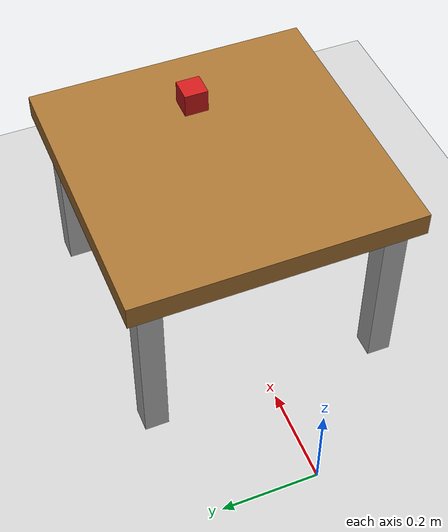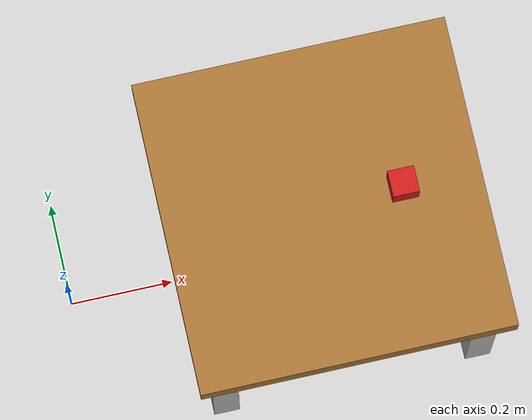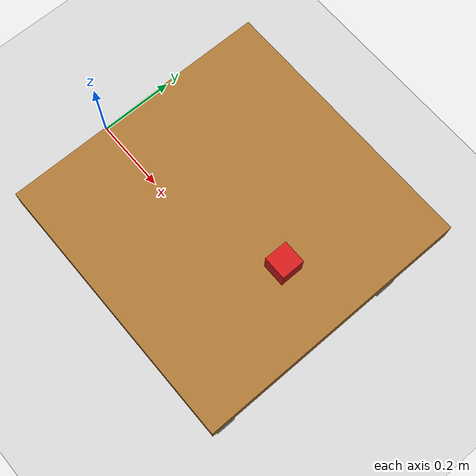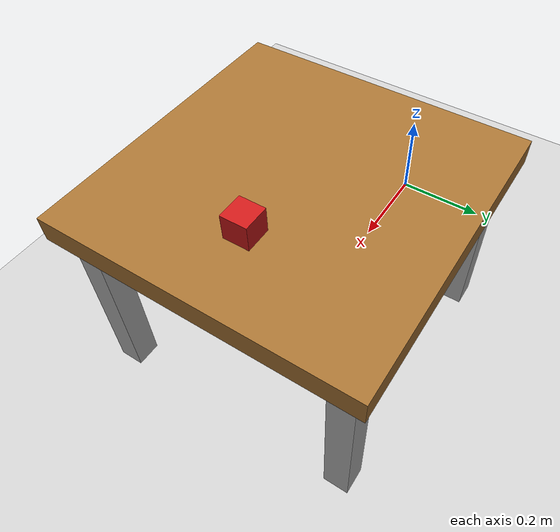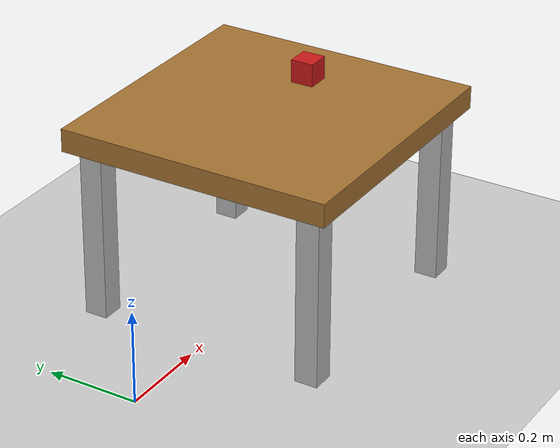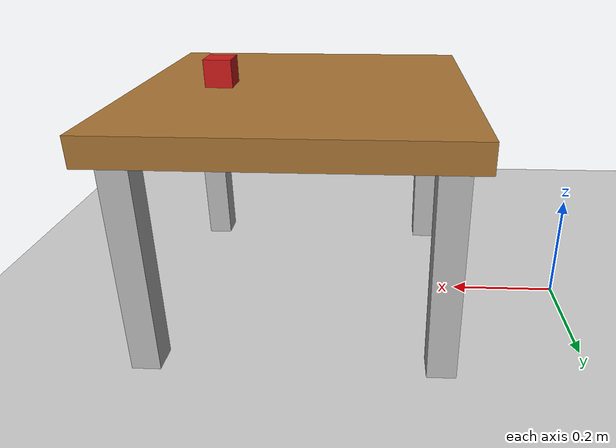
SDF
<?xml version="1.0"?>
<sdf version="1.6">
  <world name="myrobot_workshop">

    <!-- 地面：内联定义（不用 model://ground_plane，避免 gzserver 访问在线
         模型数据库 models.gazebosim.org 导致世界加载挂起；离线自包含） -->
    <model name="ground_plane">
      <static>true</static>
      <link name="link">
        <collision name="collision">
          <geometry>
            <plane>
              <normal>0 0 1</normal>
              <size>100 100</size>
            </plane>
          </geometry>
        </collision>
        <visual name="visual">
          <geometry>
            <plane>
              <normal>0 0 1</normal>
              <size>100 100</size>
            </plane>
          </geometry>
          <material>
            <script>
              <uri>file://media/materials/scripts/gazebo.material</uri>
              <name>Gazebo/Grey</name>
            </script>
          </material>
        </visual>
      </link>
    </model>

    <!-- 太阳光：内联定义（同地面，避免 model://sun 触发在线数据库查询） -->
    <light type="directional" name="sun">
      <cast_shadows>true</cast_shadows>
      <pose>0 0 10 0 0 0</pose>
      <diffuse>0.8 0.8 0.8 1</diffuse>
      <specular>0.2 0.2 0.2 1</specular>
      <direction>-0.5 0.1 -0.9</direction>
    </light>

    <!-- 桌子：桌面高 0.4m，桌面上放目标方块 -->
    <model name="table">
      <pose>0.5 0 0 0 0 0</pose>
      <!-- 固定工作台，避免动态桌体在地面上缓慢漂移并带走高摩擦目标方块。 -->
      <static>true</static>

      <link name="table_top">
        <pose>0 0 0.4 0 0 0</pose>
        <collision name="collision">
          <geometry>
            <box><size>0.6 0.6 0.05</size></box>
          </geometry>
        </collision>
        <visual name="visual">
          <geometry>
            <box><size>0.6 0.6 0.05</size></box>
          </geometry>
          <material>
            <ambient>0.65 0.45 0.2 1</ambient>
            <diffuse>0.65 0.45 0.2 1</diffuse>
          </material>
        </visual>
        <inertial>
          <mass>5</mass>
          <inertia>
            <ixx>0.305</ixx><iyy>0.305</iyy><izz>0.5</izz>
            <ixy>0</ixy><ixz>0</ixz><iyz>0</iyz>
          </inertia>
        </inertial>
      </link>

      <link name="table_leg1">
        <pose>-0.25 0.25 0.2 0 0 0</pose>
        <collision name="collision">
          <geometry>
            <box><size>0.05 0.05 0.4</size></box>
          </geometry>
        </collision>
        <visual name="visual">
          <geometry>
            <box><size>0.05 0.05 0.4</size></box>
          </geometry>
        </visual>
        <inertial>
          <mass>0.5</mass>
          <inertia>
            <ixx>0.017</ixx><iyy>0.017</iyy><izz>0.0002</izz>
            <ixy>0</ixy><ixz>0</ixz><iyz>0</iyz>
          </inertia>
        </inertial>
      </link>
      <link name="table_leg2">
        <pose>0.25 0.25 0.2 0 0 0</pose>
        <collision name="collision">
          <geometry>
            <box><size>0.05 0.05 0.4</size></box>
          </geometry>
        </collision>
        <visual name="visual">
          <geometry>
            <box><size>0.05 0.05 0.4</size></box>
          </geometry>
        </visual>
        <inertial>
          <mass>0.5</mass>
          <inertia>
            <ixx>0.017</ixx><iyy>0.017</iyy><izz>0.0002</izz>
            <ixy>0</ixy><ixz>0</ixz><iyz>0</iyz>
          </inertia>
        </inertial>
      </link>
      <link name="table_leg3">
        <pose>-0.25 -0.25 0.2 0 0 0</pose>
        <collision name="collision">
          <geometry>
            <box><size>0.05 0.05 0.4</size></box>
          </geometry>
        </collision>
        <visual name="visual">
          <geometry>
            <box><size>0.05 0.05 0.4</size></box>
          </geometry>
        </visual>
        <inertial>
          <mass>0.5</mass>
          <inertia>
            <ixx>0.017</ixx><iyy>0.017</iyy><izz>0.0002</izz>
            <ixy>0</ixy><ixz>0</ixz><iyz>0</iyz>
          </inertia>
        </inertial>
      </link>
      <link name="table_leg4">
        <pose>0.25 -0.25 0.2 0 0 0</pose>
        <collision name="collision">
          <geometry>
            <box><size>0.05 0.05 0.4</size></box>
          </geometry>
        </collision>
        <visual name="visual">
          <geometry>
            <box><size>0.05 0.05 0.4</size></box>
          </geometry>
        </visual>
        <inertial>
          <mass>0.5</mass>
          <inertia>
            <ixx>0.017</ixx><iyy>0.017</iyy><izz>0.0002</izz>
            <ixy>0</ixy><ixz>0</ixz><iyz>0</iyz>
          </inertia>
        </inertial>
      </link>

      <joint name="leg1_joint" type="fixed">
        <parent>table_top</parent>
        <child>table_leg1</child>
      </joint>
      <joint name="leg2_joint" type="fixed">
        <parent>table_top</parent>
        <child>table_leg2</child>
      </joint>
      <joint name="leg3_joint" type="fixed">
        <parent>table_top</parent>
        <child>table_leg3</child>
      </joint>
      <joint name="leg4_joint" type="fixed">
        <parent>table_top</parent>
        <child>table_leg4</child>
      </joint>
    </model>

    <!-- 目标方块：放在桌面上（桌面顶面 z≈0.425，方块中心 z=0.45） -->
    <model name="target_box">
      <pose>0.65 0 0.45 0 0 0</pose>
      <link name="box">
        <collision name="collision">
          <geometry>
            <box><size>0.05 0.05 0.05</size></box>
          </geometry>
          <surface>
            <friction>
              <ode>
                <mu>5.0</mu>
                <mu2>5.0</mu2>
              </ode>
            </friction>
          </surface>
        </collision>
        <visual name="visual">
          <geometry>
            <box><size>0.05 0.05 0.05</size></box>
          </geometry>
          <material>
            <ambient>0.8 0.1 0.1 1</ambient>
            <diffuse>0.8 0.1 0.1 1</diffuse>
          </material>
        </visual>
        <inertial>
          <mass>0.1</mass>
          <inertia>
            <ixx>0.000042</ixx><iyy>0.000042</iyy><izz>0.000042</izz>
            <ixy>0</ixy><ixz>0</ixz><iyz>0</iyz>
          </inertia>
        </inertial>
      </link>
      <plugin name="target_box_grasp_attachment" filename="libmyrobot_grasp_attach.so">
        <robot_model>my_robot</robot_model>
        <robot_link>hand_link</robot_link>
      </plugin>
    </model>

  </world>
</sdf>
